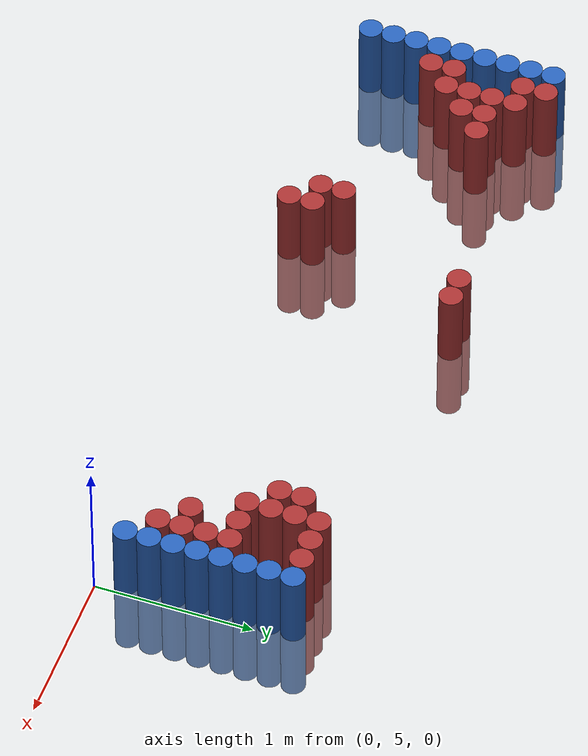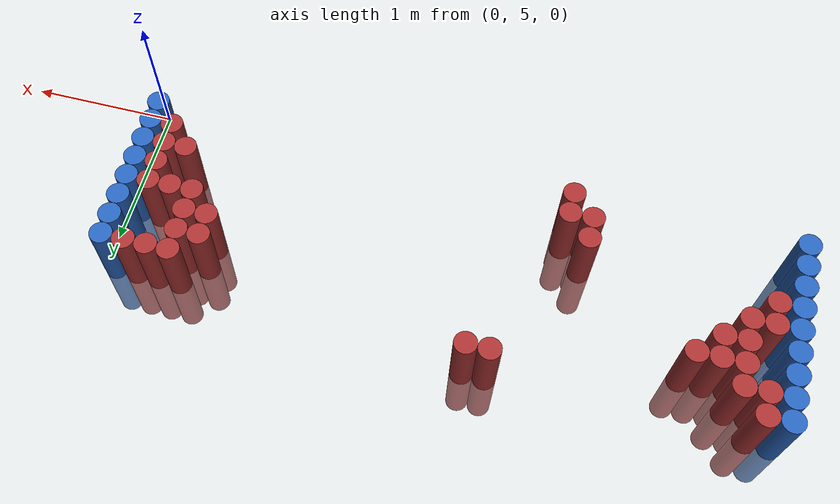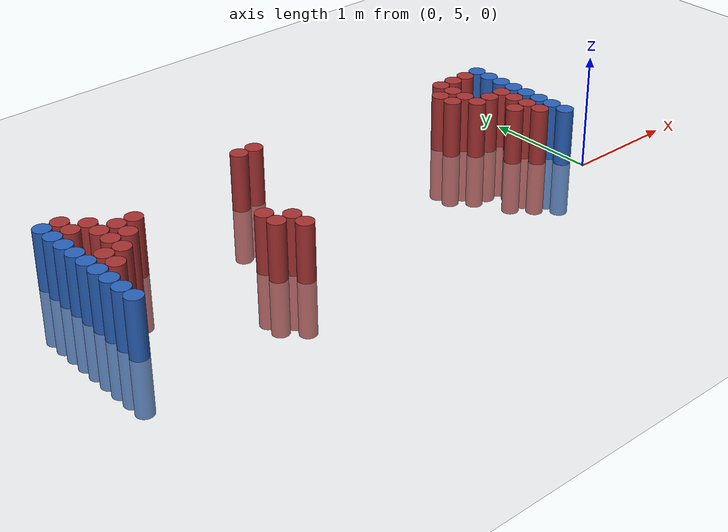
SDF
<sdf version="1.6">
 <world name="default">
  <model name="ground_plane">
   <static>1</static>
   <link name="link">
    <collision name="collision">
     <geometry><plane><normal>0 0 1</normal><size>100 100</size></plane></geometry>
     <surface><friction><ode><mu>100</mu><mu2>50</mu2></ode></friction></surface>
    </collision>
    <visual name="visual">
     <cast_shadows>0</cast_shadows>
     <geometry><plane><normal>0 0 1</normal><size>100 100</size></plane></geometry>
     <material>
      <script><uri>file://media/materials/scripts/gazebo.material</uri><name>Gazebo/Grey</name></script>
     </material>
    </visual>
   </link>
  </model>
  <model name="unit_cylinder_96">
   <static>1</static>
   <pose>-4.425000 5.175000 0.000000 0.000000 0.000000 0.000000</pose>
   <link name="link">
    <inertial>
     <mass>1</mass>
     <inertia><ixx>0.145833</ixx><ixy>0</ixy><ixz>0</ixz><iyy>0.145833</iyy><iyz>0</iyz><izz>0.125</izz></inertia>
    </inertial>
    <collision name="collision">
     <geometry><cylinder><radius>0.075000</radius><length>1</length></cylinder></geometry>
    </collision>
    <visual name="visual">
     <geometry><cylinder><radius>0.075000</radius><length>1</length></cylinder></geometry>
     <material>
      <ambient>0.152000 0.379000 0.720000 1</ambient>
      <diffuse>0.152000 0.379000 0.720000 1</diffuse>
     </material>
     <material>
      <script><name>Gazebo/Grey</name><uri>file://media/materials/scripts/gazebo.material</uri></script>
     </material>
    </visual>
   </link>
  </model>
  <model name="unit_cylinder_97">
   <static>1</static>
   <pose>-4.425000 5.325000 0.000000 0.000000 0.000000 0.000000</pose>
   <link name="link">
    <inertial>
     <mass>1</mass>
     <inertia><ixx>0.145833</ixx><ixy>0</ixy><ixz>0</ixz><iyy>0.145833</iyy><iyz>0</iyz><izz>0.125</izz></inertia>
    </inertial>
    <collision name="collision">
     <geometry><cylinder><radius>0.075000</radius><length>1</length></cylinder></geometry>
    </collision>
    <visual name="visual">
     <geometry><cylinder><radius>0.075000</radius><length>1</length></cylinder></geometry>
     <material>
      <ambient>0.152000 0.379000 0.720000 1</ambient>
      <diffuse>0.152000 0.379000 0.720000 1</diffuse>
     </material>
     <material>
      <script><name>Gazebo/Grey</name><uri>file://media/materials/scripts/gazebo.material</uri></script>
     </material>
    </visual>
   </link>
  </model>
  <model name="unit_cylinder_98">
   <static>1</static>
   <pose>-4.425000 5.475000 0.000000 0.000000 0.000000 0.000000</pose>
   <link name="link">
    <inertial>
     <mass>1</mass>
     <inertia><ixx>0.145833</ixx><ixy>0</ixy><ixz>0</ixz><iyy>0.145833</iyy><iyz>0</iyz><izz>0.125</izz></inertia>
    </inertial>
    <collision name="collision">
     <geometry><cylinder><radius>0.075000</radius><length>1</length></cylinder></geometry>
    </collision>
    <visual name="visual">
     <geometry><cylinder><radius>0.075000</radius><length>1</length></cylinder></geometry>
     <material>
      <ambient>0.152000 0.379000 0.720000 1</ambient>
      <diffuse>0.152000 0.379000 0.720000 1</diffuse>
     </material>
     <material>
      <script><name>Gazebo/Grey</name><uri>file://media/materials/scripts/gazebo.material</uri></script>
     </material>
    </visual>
   </link>
  </model>
  <model name="unit_cylinder_99">
   <static>1</static>
   <pose>-4.425000 5.625000 0.000000 0.000000 0.000000 0.000000</pose>
   <link name="link">
    <inertial>
     <mass>1</mass>
     <inertia><ixx>0.145833</ixx><ixy>0</ixy><ixz>0</ixz><iyy>0.145833</iyy><iyz>0</iyz><izz>0.125</izz></inertia>
    </inertial>
    <collision name="collision">
     <geometry><cylinder><radius>0.075000</radius><length>1</length></cylinder></geometry>
    </collision>
    <visual name="visual">
     <geometry><cylinder><radius>0.075000</radius><length>1</length></cylinder></geometry>
     <material>
      <ambient>0.152000 0.379000 0.720000 1</ambient>
      <diffuse>0.152000 0.379000 0.720000 1</diffuse>
     </material>
     <material>
      <script><name>Gazebo/Grey</name><uri>file://media/materials/scripts/gazebo.material</uri></script>
     </material>
    </visual>
   </link>
  </model>
  <model name="unit_cylinder_100">
   <static>1</static>
   <pose>-4.425000 5.775000 0.000000 0.000000 0.000000 0.000000</pose>
   <link name="link">
    <inertial>
     <mass>1</mass>
     <inertia><ixx>0.145833</ixx><ixy>0</ixy><ixz>0</ixz><iyy>0.145833</iyy><iyz>0</iyz><izz>0.125</izz></inertia>
    </inertial>
    <collision name="collision">
     <geometry><cylinder><radius>0.075000</radius><length>1</length></cylinder></geometry>
    </collision>
    <visual name="visual">
     <geometry><cylinder><radius>0.075000</radius><length>1</length></cylinder></geometry>
     <material>
      <ambient>0.152000 0.379000 0.720000 1</ambient>
      <diffuse>0.152000 0.379000 0.720000 1</diffuse>
     </material>
     <material>
      <script><name>Gazebo/Grey</name><uri>file://media/materials/scripts/gazebo.material</uri></script>
     </material>
    </visual>
   </link>
  </model>
  <model name="unit_cylinder_101">
   <static>1</static>
   <pose>-4.425000 5.925000 0.000000 0.000000 0.000000 0.000000</pose>
   <link name="link">
    <inertial>
     <mass>1</mass>
     <inertia><ixx>0.145833</ixx><ixy>0</ixy><ixz>0</ixz><iyy>0.145833</iyy><iyz>0</iyz><izz>0.125</izz></inertia>
    </inertial>
    <collision name="collision">
     <geometry><cylinder><radius>0.075000</radius><length>1</length></cylinder></geometry>
    </collision>
    <visual name="visual">
     <geometry><cylinder><radius>0.075000</radius><length>1</length></cylinder></geometry>
     <material>
      <ambient>0.152000 0.379000 0.720000 1</ambient>
      <diffuse>0.152000 0.379000 0.720000 1</diffuse>
     </material>
     <material>
      <script><name>Gazebo/Grey</name><uri>file://media/materials/scripts/gazebo.material</uri></script>
     </material>
    </visual>
   </link>
  </model>
  <model name="unit_cylinder_102">
   <static>1</static>
   <pose>-4.425000 6.075000 0.000000 0.000000 0.000000 0.000000</pose>
   <link name="link">
    <inertial>
     <mass>1</mass>
     <inertia><ixx>0.145833</ixx><ixy>0</ixy><ixz>0</ixz><iyy>0.145833</iyy><iyz>0</iyz><izz>0.125</izz></inertia>
    </inertial>
    <collision name="collision">
     <geometry><cylinder><radius>0.075000</radius><length>1</length></cylinder></geometry>
    </collision>
    <visual name="visual">
     <geometry><cylinder><radius>0.075000</radius><length>1</length></cylinder></geometry>
     <material>
      <ambient>0.152000 0.379000 0.720000 1</ambient>
      <diffuse>0.152000 0.379000 0.720000 1</diffuse>
     </material>
     <material>
      <script><name>Gazebo/Grey</name><uri>file://media/materials/scripts/gazebo.material</uri></script>
     </material>
    </visual>
   </link>
  </model>
  <model name="unit_cylinder_103">
   <static>1</static>
   <pose>-4.425000 6.225000 0.000000 0.000000 0.000000 0.000000</pose>
   <link name="link">
    <inertial>
     <mass>1</mass>
     <inertia><ixx>0.145833</ixx><ixy>0</ixy><ixz>0</ixz><iyy>0.145833</iyy><iyz>0</iyz><izz>0.125</izz></inertia>
    </inertial>
    <collision name="collision">
     <geometry><cylinder><radius>0.075000</radius><length>1</length></cylinder></geometry>
    </collision>
    <visual name="visual">
     <geometry><cylinder><radius>0.075000</radius><length>1</length></cylinder></geometry>
     <material>
      <ambient>0.152000 0.379000 0.720000 1</ambient>
      <diffuse>0.152000 0.379000 0.720000 1</diffuse>
     </material>
     <material>
      <script><name>Gazebo/Grey</name><uri>file://media/materials/scripts/gazebo.material</uri></script>
     </material>
    </visual>
   </link>
  </model>
  <model name="unit_cylinder_104">
   <static>1</static>
   <pose>-4.425000 6.375000 0.000000 0.000000 0.000000 0.000000</pose>
   <link name="link">
    <inertial>
     <mass>1</mass>
     <inertia><ixx>0.145833</ixx><ixy>0</ixy><ixz>0</ixz><iyy>0.145833</iyy><iyz>0</iyz><izz>0.125</izz></inertia>
    </inertial>
    <collision name="collision">
     <geometry><cylinder><radius>0.075000</radius><length>1</length></cylinder></geometry>
    </collision>
    <visual name="visual">
     <geometry><cylinder><radius>0.075000</radius><length>1</length></cylinder></geometry>
     <material>
      <ambient>0.152000 0.379000 0.720000 1</ambient>
      <diffuse>0.152000 0.379000 0.720000 1</diffuse>
     </material>
     <material>
      <script><name>Gazebo/Grey</name><uri>file://media/materials/scripts/gazebo.material</uri></script>
     </material>
    </visual>
   </link>
  </model>
  <model name="unit_cylinder_126">
   <static>1</static>
   <pose>-4.275000 5.625000 0.000000 0.000000 0.000000 0.000000</pose>
   <link name="link">
    <inertial>
     <mass>1</mass>
     <inertia><ixx>0.145833</ixx><ixy>0</ixy><ixz>0</ixz><iyy>0.145833</iyy><iyz>0</iyz><izz>0.125</izz></inertia>
    </inertial>
    <collision name="collision">
     <geometry><cylinder><radius>0.075000</radius><length>1</length></cylinder></geometry>
    </collision>
    <visual name="visual">
     <geometry><cylinder><radius>0.075000</radius><length>1</length></cylinder></geometry>
     <material>
      <ambient>0.648000 0.192000 0.192000 1</ambient>
      <diffuse>0.648000 0.192000 0.192000 1</diffuse>
     </material>
     <material>
      <script><name>Gazebo/Grey</name><uri>file://media/materials/scripts/gazebo.material</uri></script>
     </material>
    </visual>
   </link>
  </model>
  <model name="unit_cylinder_127">
   <static>1</static>
   <pose>-4.275000 5.775000 0.000000 0.000000 0.000000 0.000000</pose>
   <link name="link">
    <inertial>
     <mass>1</mass>
     <inertia><ixx>0.145833</ixx><ixy>0</ixy><ixz>0</ixz><iyy>0.145833</iyy><iyz>0</iyz><izz>0.125</izz></inertia>
    </inertial>
    <collision name="collision">
     <geometry><cylinder><radius>0.075000</radius><length>1</length></cylinder></geometry>
    </collision>
    <visual name="visual">
     <geometry><cylinder><radius>0.075000</radius><length>1</length></cylinder></geometry>
     <material>
      <ambient>0.648000 0.192000 0.192000 1</ambient>
      <diffuse>0.648000 0.192000 0.192000 1</diffuse>
     </material>
     <material>
      <script><name>Gazebo/Grey</name><uri>file://media/materials/scripts/gazebo.material</uri></script>
     </material>
    </visual>
   </link>
  </model>
  <model name="unit_cylinder_128">
   <static>1</static>
   <pose>-4.275000 6.225000 0.000000 0.000000 0.000000 0.000000</pose>
   <link name="link">
    <inertial>
     <mass>1</mass>
     <inertia><ixx>0.145833</ixx><ixy>0</ixy><ixz>0</ixz><iyy>0.145833</iyy><iyz>0</iyz><izz>0.125</izz></inertia>
    </inertial>
    <collision name="collision">
     <geometry><cylinder><radius>0.075000</radius><length>1</length></cylinder></geometry>
    </collision>
    <visual name="visual">
     <geometry><cylinder><radius>0.075000</radius><length>1</length></cylinder></geometry>
     <material>
      <ambient>0.648000 0.192000 0.192000 1</ambient>
      <diffuse>0.648000 0.192000 0.192000 1</diffuse>
     </material>
     <material>
      <script><name>Gazebo/Grey</name><uri>file://media/materials/scripts/gazebo.material</uri></script>
     </material>
    </visual>
   </link>
  </model>
  <model name="unit_cylinder_129">
   <static>1</static>
   <pose>-4.275000 6.375000 0.000000 0.000000 0.000000 0.000000</pose>
   <link name="link">
    <inertial>
     <mass>1</mass>
     <inertia><ixx>0.145833</ixx><ixy>0</ixy><ixz>0</ixz><iyy>0.145833</iyy><iyz>0</iyz><izz>0.125</izz></inertia>
    </inertial>
    <collision name="collision">
     <geometry><cylinder><radius>0.075000</radius><length>1</length></cylinder></geometry>
    </collision>
    <visual name="visual">
     <geometry><cylinder><radius>0.075000</radius><length>1</length></cylinder></geometry>
     <material>
      <ambient>0.648000 0.192000 0.192000 1</ambient>
      <diffuse>0.648000 0.192000 0.192000 1</diffuse>
     </material>
     <material>
      <script><name>Gazebo/Grey</name><uri>file://media/materials/scripts/gazebo.material</uri></script>
     </material>
    </visual>
   </link>
  </model>
  <model name="unit_cylinder_134">
   <static>1</static>
   <pose>-4.125000 5.775000 0.000000 0.000000 0.000000 0.000000</pose>
   <link name="link">
    <inertial>
     <mass>1</mass>
     <inertia><ixx>0.145833</ixx><ixy>0</ixy><ixz>0</ixz><iyy>0.145833</iyy><iyz>0</iyz><izz>0.125</izz></inertia>
    </inertial>
    <collision name="collision">
     <geometry><cylinder><radius>0.075000</radius><length>1</length></cylinder></geometry>
    </collision>
    <visual name="visual">
     <geometry><cylinder><radius>0.075000</radius><length>1</length></cylinder></geometry>
     <material>
      <ambient>0.648000 0.192000 0.192000 1</ambient>
      <diffuse>0.648000 0.192000 0.192000 1</diffuse>
     </material>
     <material>
      <script><name>Gazebo/Grey</name><uri>file://media/materials/scripts/gazebo.material</uri></script>
     </material>
    </visual>
   </link>
  </model>
  <model name="unit_cylinder_135">
   <static>1</static>
   <pose>-4.125000 5.925000 0.000000 0.000000 0.000000 0.000000</pose>
   <link name="link">
    <inertial>
     <mass>1</mass>
     <inertia><ixx>0.145833</ixx><ixy>0</ixy><ixz>0</ixz><iyy>0.145833</iyy><iyz>0</iyz><izz>0.125</izz></inertia>
    </inertial>
    <collision name="collision">
     <geometry><cylinder><radius>0.075000</radius><length>1</length></cylinder></geometry>
    </collision>
    <visual name="visual">
     <geometry><cylinder><radius>0.075000</radius><length>1</length></cylinder></geometry>
     <material>
      <ambient>0.648000 0.192000 0.192000 1</ambient>
      <diffuse>0.648000 0.192000 0.192000 1</diffuse>
     </material>
     <material>
      <script><name>Gazebo/Grey</name><uri>file://media/materials/scripts/gazebo.material</uri></script>
     </material>
    </visual>
   </link>
  </model>
  <model name="unit_cylinder_136">
   <static>1</static>
   <pose>-4.125000 6.075000 0.000000 0.000000 0.000000 0.000000</pose>
   <link name="link">
    <inertial>
     <mass>1</mass>
     <inertia><ixx>0.145833</ixx><ixy>0</ixy><ixz>0</ixz><iyy>0.145833</iyy><iyz>0</iyz><izz>0.125</izz></inertia>
    </inertial>
    <collision name="collision">
     <geometry><cylinder><radius>0.075000</radius><length>1</length></cylinder></geometry>
    </collision>
    <visual name="visual">
     <geometry><cylinder><radius>0.075000</radius><length>1</length></cylinder></geometry>
     <material>
      <ambient>0.648000 0.192000 0.192000 1</ambient>
      <diffuse>0.648000 0.192000 0.192000 1</diffuse>
     </material>
     <material>
      <script><name>Gazebo/Grey</name><uri>file://media/materials/scripts/gazebo.material</uri></script>
     </material>
    </visual>
   </link>
  </model>
  <model name="unit_cylinder_137">
   <static>1</static>
   <pose>-4.125000 6.225000 0.000000 0.000000 0.000000 0.000000</pose>
   <link name="link">
    <inertial>
     <mass>1</mass>
     <inertia><ixx>0.145833</ixx><ixy>0</ixy><ixz>0</ixz><iyy>0.145833</iyy><iyz>0</iyz><izz>0.125</izz></inertia>
    </inertial>
    <collision name="collision">
     <geometry><cylinder><radius>0.075000</radius><length>1</length></cylinder></geometry>
    </collision>
    <visual name="visual">
     <geometry><cylinder><radius>0.075000</radius><length>1</length></cylinder></geometry>
     <material>
      <ambient>0.648000 0.192000 0.192000 1</ambient>
      <diffuse>0.648000 0.192000 0.192000 1</diffuse>
     </material>
     <material>
      <script><name>Gazebo/Grey</name><uri>file://media/materials/scripts/gazebo.material</uri></script>
     </material>
    </visual>
   </link>
  </model>
  <model name="unit_cylinder_139">
   <static>1</static>
   <pose>-3.975000 5.925000 0.000000 0.000000 0.000000 0.000000</pose>
   <link name="link">
    <inertial>
     <mass>1</mass>
     <inertia><ixx>0.145833</ixx><ixy>0</ixy><ixz>0</ixz><iyy>0.145833</iyy><iyz>0</iyz><izz>0.125</izz></inertia>
    </inertial>
    <collision name="collision">
     <geometry><cylinder><radius>0.075000</radius><length>1</length></cylinder></geometry>
    </collision>
    <visual name="visual">
     <geometry><cylinder><radius>0.075000</radius><length>1</length></cylinder></geometry>
     <material>
      <ambient>0.648000 0.192000 0.192000 1</ambient>
      <diffuse>0.648000 0.192000 0.192000 1</diffuse>
     </material>
     <material>
      <script><name>Gazebo/Grey</name><uri>file://media/materials/scripts/gazebo.material</uri></script>
     </material>
    </visual>
   </link>
  </model>
  <model name="unit_cylinder_140">
   <static>1</static>
   <pose>-3.975000 6.075000 0.000000 0.000000 0.000000 0.000000</pose>
   <link name="link">
    <inertial>
     <mass>1</mass>
     <inertia><ixx>0.145833</ixx><ixy>0</ixy><ixz>0</ixz><iyy>0.145833</iyy><iyz>0</iyz><izz>0.125</izz></inertia>
    </inertial>
    <collision name="collision">
     <geometry><cylinder><radius>0.075000</radius><length>1</length></cylinder></geometry>
    </collision>
    <visual name="visual">
     <geometry><cylinder><radius>0.075000</radius><length>1</length></cylinder></geometry>
     <material>
      <ambient>0.648000 0.192000 0.192000 1</ambient>
      <diffuse>0.648000 0.192000 0.192000 1</diffuse>
     </material>
     <material>
      <script><name>Gazebo/Grey</name><uri>file://media/materials/scripts/gazebo.material</uri></script>
     </material>
    </visual>
   </link>
  </model>
  <model name="unit_cylinder_142">
   <static>1</static>
   <pose>-3.825000 6.075000 0.000000 0.000000 0.000000 0.000000</pose>
   <link name="link">
    <inertial>
     <mass>1</mass>
     <inertia><ixx>0.145833</ixx><ixy>0</ixy><ixz>0</ixz><iyy>0.145833</iyy><iyz>0</iyz><izz>0.125</izz></inertia>
    </inertial>
    <collision name="collision">
     <geometry><cylinder><radius>0.075000</radius><length>1</length></cylinder></geometry>
    </collision>
    <visual name="visual">
     <geometry><cylinder><radius>0.075000</radius><length>1</length></cylinder></geometry>
     <material>
      <ambient>0.648000 0.192000 0.192000 1</ambient>
      <diffuse>0.648000 0.192000 0.192000 1</diffuse>
     </material>
     <material>
      <script><name>Gazebo/Grey</name><uri>file://media/materials/scripts/gazebo.material</uri></script>
     </material>
    </visual>
   </link>
  </model>
  <model name="unit_cylinder_164">
   <static>1</static>
   <pose>-3.075000 5.325000 0.000000 0.000000 0.000000 0.000000</pose>
   <link name="link">
    <inertial>
     <mass>1</mass>
     <inertia><ixx>0.145833</ixx><ixy>0</ixy><ixz>0</ixz><iyy>0.145833</iyy><iyz>0</iyz><izz>0.125</izz></inertia>
    </inertial>
    <collision name="collision">
     <geometry><cylinder><radius>0.075000</radius><length>1</length></cylinder></geometry>
    </collision>
    <visual name="visual">
     <geometry><cylinder><radius>0.075000</radius><length>1</length></cylinder></geometry>
     <material>
      <ambient>0.648000 0.192000 0.192000 1</ambient>
      <diffuse>0.648000 0.192000 0.192000 1</diffuse>
     </material>
     <material>
      <script><name>Gazebo/Grey</name><uri>file://media/materials/scripts/gazebo.material</uri></script>
     </material>
    </visual>
   </link>
  </model>
  <model name="unit_cylinder_165">
   <static>1</static>
   <pose>-3.075000 5.475000 0.000000 0.000000 0.000000 0.000000</pose>
   <link name="link">
    <inertial>
     <mass>1</mass>
     <inertia><ixx>0.145833</ixx><ixy>0</ixy><ixz>0</ixz><iyy>0.145833</iyy><iyz>0</iyz><izz>0.125</izz></inertia>
    </inertial>
    <collision name="collision">
     <geometry><cylinder><radius>0.075000</radius><length>1</length></cylinder></geometry>
    </collision>
    <visual name="visual">
     <geometry><cylinder><radius>0.075000</radius><length>1</length></cylinder></geometry>
     <material>
      <ambient>0.648000 0.192000 0.192000 1</ambient>
      <diffuse>0.648000 0.192000 0.192000 1</diffuse>
     </material>
     <material>
      <script><name>Gazebo/Grey</name><uri>file://media/materials/scripts/gazebo.material</uri></script>
     </material>
    </visual>
   </link>
  </model>
  <model name="unit_cylinder_167">
   <static>1</static>
   <pose>-2.925000 5.175000 0.000000 0.000000 0.000000 0.000000</pose>
   <link name="link">
    <inertial>
     <mass>1</mass>
     <inertia><ixx>0.145833</ixx><ixy>0</ixy><ixz>0</ixz><iyy>0.145833</iyy><iyz>0</iyz><izz>0.125</izz></inertia>
    </inertial>
    <collision name="collision">
     <geometry><cylinder><radius>0.075000</radius><length>1</length></cylinder></geometry>
    </collision>
    <visual name="visual">
     <geometry><cylinder><radius>0.075000</radius><length>1</length></cylinder></geometry>
     <material>
      <ambient>0.648000 0.192000 0.192000 1</ambient>
      <diffuse>0.648000 0.192000 0.192000 1</diffuse>
     </material>
     <material>
      <script><name>Gazebo/Grey</name><uri>file://media/materials/scripts/gazebo.material</uri></script>
     </material>
    </visual>
   </link>
  </model>
  <model name="unit_cylinder_168">
   <static>1</static>
   <pose>-2.925000 5.325000 0.000000 0.000000 0.000000 0.000000</pose>
   <link name="link">
    <inertial>
     <mass>1</mass>
     <inertia><ixx>0.145833</ixx><ixy>0</ixy><ixz>0</ixz><iyy>0.145833</iyy><iyz>0</iyz><izz>0.125</izz></inertia>
    </inertial>
    <collision name="collision">
     <geometry><cylinder><radius>0.075000</radius><length>1</length></cylinder></geometry>
    </collision>
    <visual name="visual">
     <geometry><cylinder><radius>0.075000</radius><length>1</length></cylinder></geometry>
     <material>
      <ambient>0.648000 0.192000 0.192000 1</ambient>
      <diffuse>0.648000 0.192000 0.192000 1</diffuse>
     </material>
     <material>
      <script><name>Gazebo/Grey</name><uri>file://media/materials/scripts/gazebo.material</uri></script>
     </material>
    </visual>
   </link>
  </model>
  <model name="unit_cylinder_169">
   <static>1</static>
   <pose>-2.625000 6.375000 0.000000 0.000000 0.000000 0.000000</pose>
   <link name="link">
    <inertial>
     <mass>1</mass>
     <inertia><ixx>0.145833</ixx><ixy>0</ixy><ixz>0</ixz><iyy>0.145833</iyy><iyz>0</iyz><izz>0.125</izz></inertia>
    </inertial>
    <collision name="collision">
     <geometry><cylinder><radius>0.075000</radius><length>1</length></cylinder></geometry>
    </collision>
    <visual name="visual">
     <geometry><cylinder><radius>0.075000</radius><length>1</length></cylinder></geometry>
     <material>
      <ambient>0.648000 0.192000 0.192000 1</ambient>
      <diffuse>0.648000 0.192000 0.192000 1</diffuse>
     </material>
     <material>
      <script><name>Gazebo/Grey</name><uri>file://media/materials/scripts/gazebo.material</uri></script>
     </material>
    </visual>
   </link>
  </model>
  <model name="unit_cylinder_174">
   <static>1</static>
   <pose>-2.475000 6.375000 0.000000 0.000000 0.000000 0.000000</pose>
   <link name="link">
    <inertial>
     <mass>1</mass>
     <inertia><ixx>0.145833</ixx><ixy>0</ixy><ixz>0</ixz><iyy>0.145833</iyy><iyz>0</iyz><izz>0.125</izz></inertia>
    </inertial>
    <collision name="collision">
     <geometry><cylinder><radius>0.075000</radius><length>1</length></cylinder></geometry>
    </collision>
    <visual name="visual">
     <geometry><cylinder><radius>0.075000</radius><length>1</length></cylinder></geometry>
     <material>
      <ambient>0.648000 0.192000 0.192000 1</ambient>
      <diffuse>0.648000 0.192000 0.192000 1</diffuse>
     </material>
     <material>
      <script><name>Gazebo/Grey</name><uri>file://media/materials/scripts/gazebo.material</uri></script>
     </material>
    </visual>
   </link>
  </model>
  <model name="unit_cylinder_193">
   <static>1</static>
   <pose>-0.675000 5.925000 0.000000 0.000000 0.000000 0.000000</pose>
   <link name="link">
    <inertial>
     <mass>1</mass>
     <inertia><ixx>0.145833</ixx><ixy>0</ixy><ixz>0</ixz><iyy>0.145833</iyy><iyz>0</iyz><izz>0.125</izz></inertia>
    </inertial>
    <collision name="collision">
     <geometry><cylinder><radius>0.075000</radius><length>1</length></cylinder></geometry>
    </collision>
    <visual name="visual">
     <geometry><cylinder><radius>0.075000</radius><length>1</length></cylinder></geometry>
     <material>
      <ambient>0.648000 0.192000 0.192000 1</ambient>
      <diffuse>0.648000 0.192000 0.192000 1</diffuse>
     </material>
     <material>
      <script><name>Gazebo/Grey</name><uri>file://media/materials/scripts/gazebo.material</uri></script>
     </material>
    </visual>
   </link>
  </model>
  <model name="unit_cylinder_194">
   <static>1</static>
   <pose>-0.675000 6.075000 0.000000 0.000000 0.000000 0.000000</pose>
   <link name="link">
    <inertial>
     <mass>1</mass>
     <inertia><ixx>0.145833</ixx><ixy>0</ixy><ixz>0</ixz><iyy>0.145833</iyy><iyz>0</iyz><izz>0.125</izz></inertia>
    </inertial>
    <collision name="collision">
     <geometry><cylinder><radius>0.075000</radius><length>1</length></cylinder></geometry>
    </collision>
    <visual name="visual">
     <geometry><cylinder><radius>0.075000</radius><length>1</length></cylinder></geometry>
     <material>
      <ambient>0.648000 0.192000 0.192000 1</ambient>
      <diffuse>0.648000 0.192000 0.192000 1</diffuse>
     </material>
     <material>
      <script><name>Gazebo/Grey</name><uri>file://media/materials/scripts/gazebo.material</uri></script>
     </material>
    </visual>
   </link>
  </model>
  <model name="unit_cylinder_195">
   <static>1</static>
   <pose>-0.525000 5.775000 0.000000 0.000000 0.000000 0.000000</pose>
   <link name="link">
    <inertial>
     <mass>1</mass>
     <inertia><ixx>0.145833</ixx><ixy>0</ixy><ixz>0</ixz><iyy>0.145833</iyy><iyz>0</iyz><izz>0.125</izz></inertia>
    </inertial>
    <collision name="collision">
     <geometry><cylinder><radius>0.075000</radius><length>1</length></cylinder></geometry>
    </collision>
    <visual name="visual">
     <geometry><cylinder><radius>0.075000</radius><length>1</length></cylinder></geometry>
     <material>
      <ambient>0.648000 0.192000 0.192000 1</ambient>
      <diffuse>0.648000 0.192000 0.192000 1</diffuse>
     </material>
     <material>
      <script><name>Gazebo/Grey</name><uri>file://media/materials/scripts/gazebo.material</uri></script>
     </material>
    </visual>
   </link>
  </model>
  <model name="unit_cylinder_196">
   <static>1</static>
   <pose>-0.525000 5.925000 0.000000 0.000000 0.000000 0.000000</pose>
   <link name="link">
    <inertial>
     <mass>1</mass>
     <inertia><ixx>0.145833</ixx><ixy>0</ixy><ixz>0</ixz><iyy>0.145833</iyy><iyz>0</iyz><izz>0.125</izz></inertia>
    </inertial>
    <collision name="collision">
     <geometry><cylinder><radius>0.075000</radius><length>1</length></cylinder></geometry>
    </collision>
    <visual name="visual">
     <geometry><cylinder><radius>0.075000</radius><length>1</length></cylinder></geometry>
     <material>
      <ambient>0.648000 0.192000 0.192000 1</ambient>
      <diffuse>0.648000 0.192000 0.192000 1</diffuse>
     </material>
     <material>
      <script><name>Gazebo/Grey</name><uri>file://media/materials/scripts/gazebo.material</uri></script>
     </material>
    </visual>
   </link>
  </model>
  <model name="unit_cylinder_197">
   <static>1</static>
   <pose>-0.525000 6.075000 0.000000 0.000000 0.000000 0.000000</pose>
   <link name="link">
    <inertial>
     <mass>1</mass>
     <inertia><ixx>0.145833</ixx><ixy>0</ixy><ixz>0</ixz><iyy>0.145833</iyy><iyz>0</iyz><izz>0.125</izz></inertia>
    </inertial>
    <collision name="collision">
     <geometry><cylinder><radius>0.075000</radius><length>1</length></cylinder></geometry>
    </collision>
    <visual name="visual">
     <geometry><cylinder><radius>0.075000</radius><length>1</length></cylinder></geometry>
     <material>
      <ambient>0.648000 0.192000 0.192000 1</ambient>
      <diffuse>0.648000 0.192000 0.192000 1</diffuse>
     </material>
     <material>
      <script><name>Gazebo/Grey</name><uri>file://media/materials/scripts/gazebo.material</uri></script>
     </material>
    </visual>
   </link>
  </model>
  <model name="unit_cylinder_198">
   <static>1</static>
   <pose>-0.525000 6.225000 0.000000 0.000000 0.000000 0.000000</pose>
   <link name="link">
    <inertial>
     <mass>1</mass>
     <inertia><ixx>0.145833</ixx><ixy>0</ixy><ixz>0</ixz><iyy>0.145833</iyy><iyz>0</iyz><izz>0.125</izz></inertia>
    </inertial>
    <collision name="collision">
     <geometry><cylinder><radius>0.075000</radius><length>1</length></cylinder></geometry>
    </collision>
    <visual name="visual">
     <geometry><cylinder><radius>0.075000</radius><length>1</length></cylinder></geometry>
     <material>
      <ambient>0.648000 0.192000 0.192000 1</ambient>
      <diffuse>0.648000 0.192000 0.192000 1</diffuse>
     </material>
     <material>
      <script><name>Gazebo/Grey</name><uri>file://media/materials/scripts/gazebo.material</uri></script>
     </material>
    </visual>
   </link>
  </model>
  <model name="unit_cylinder_199">
   <static>1</static>
   <pose>-0.375000 5.475000 0.000000 0.000000 0.000000 0.000000</pose>
   <link name="link">
    <inertial>
     <mass>1</mass>
     <inertia><ixx>0.145833</ixx><ixy>0</ixy><ixz>0</ixz><iyy>0.145833</iyy><iyz>0</iyz><izz>0.125</izz></inertia>
    </inertial>
    <collision name="collision">
     <geometry><cylinder><radius>0.075000</radius><length>1</length></cylinder></geometry>
    </collision>
    <visual name="visual">
     <geometry><cylinder><radius>0.075000</radius><length>1</length></cylinder></geometry>
     <material>
      <ambient>0.648000 0.192000 0.192000 1</ambient>
      <diffuse>0.648000 0.192000 0.192000 1</diffuse>
     </material>
     <material>
      <script><name>Gazebo/Grey</name><uri>file://media/materials/scripts/gazebo.material</uri></script>
     </material>
    </visual>
   </link>
  </model>
  <model name="unit_cylinder_200">
   <static>1</static>
   <pose>-0.375000 5.775000 0.000000 0.000000 0.000000 0.000000</pose>
   <link name="link">
    <inertial>
     <mass>1</mass>
     <inertia><ixx>0.145833</ixx><ixy>0</ixy><ixz>0</ixz><iyy>0.145833</iyy><iyz>0</iyz><izz>0.125</izz></inertia>
    </inertial>
    <collision name="collision">
     <geometry><cylinder><radius>0.075000</radius><length>1</length></cylinder></geometry>
    </collision>
    <visual name="visual">
     <geometry><cylinder><radius>0.075000</radius><length>1</length></cylinder></geometry>
     <material>
      <ambient>0.648000 0.192000 0.192000 1</ambient>
      <diffuse>0.648000 0.192000 0.192000 1</diffuse>
     </material>
     <material>
      <script><name>Gazebo/Grey</name><uri>file://media/materials/scripts/gazebo.material</uri></script>
     </material>
    </visual>
   </link>
  </model>
  <model name="unit_cylinder_201">
   <static>1</static>
   <pose>-0.375000 6.225000 0.000000 0.000000 0.000000 0.000000</pose>
   <link name="link">
    <inertial>
     <mass>1</mass>
     <inertia><ixx>0.145833</ixx><ixy>0</ixy><ixz>0</ixz><iyy>0.145833</iyy><iyz>0</iyz><izz>0.125</izz></inertia>
    </inertial>
    <collision name="collision">
     <geometry><cylinder><radius>0.075000</radius><length>1</length></cylinder></geometry>
    </collision>
    <visual name="visual">
     <geometry><cylinder><radius>0.075000</radius><length>1</length></cylinder></geometry>
     <material>
      <ambient>0.648000 0.192000 0.192000 1</ambient>
      <diffuse>0.648000 0.192000 0.192000 1</diffuse>
     </material>
     <material>
      <script><name>Gazebo/Grey</name><uri>file://media/materials/scripts/gazebo.material</uri></script>
     </material>
    </visual>
   </link>
  </model>
  <model name="unit_cylinder_202">
   <static>1</static>
   <pose>-0.225000 5.325000 0.000000 0.000000 0.000000 0.000000</pose>
   <link name="link">
    <inertial>
     <mass>1</mass>
     <inertia><ixx>0.145833</ixx><ixy>0</ixy><ixz>0</ixz><iyy>0.145833</iyy><iyz>0</iyz><izz>0.125</izz></inertia>
    </inertial>
    <collision name="collision">
     <geometry><cylinder><radius>0.075000</radius><length>1</length></cylinder></geometry>
    </collision>
    <visual name="visual">
     <geometry><cylinder><radius>0.075000</radius><length>1</length></cylinder></geometry>
     <material>
      <ambient>0.648000 0.192000 0.192000 1</ambient>
      <diffuse>0.648000 0.192000 0.192000 1</diffuse>
     </material>
     <material>
      <script><name>Gazebo/Grey</name><uri>file://media/materials/scripts/gazebo.material</uri></script>
     </material>
    </visual>
   </link>
  </model>
  <model name="unit_cylinder_203">
   <static>1</static>
   <pose>-0.225000 5.475000 0.000000 0.000000 0.000000 0.000000</pose>
   <link name="link">
    <inertial>
     <mass>1</mass>
     <inertia><ixx>0.145833</ixx><ixy>0</ixy><ixz>0</ixz><iyy>0.145833</iyy><iyz>0</iyz><izz>0.125</izz></inertia>
    </inertial>
    <collision name="collision">
     <geometry><cylinder><radius>0.075000</radius><length>1</length></cylinder></geometry>
    </collision>
    <visual name="visual">
     <geometry><cylinder><radius>0.075000</radius><length>1</length></cylinder></geometry>
     <material>
      <ambient>0.648000 0.192000 0.192000 1</ambient>
      <diffuse>0.648000 0.192000 0.192000 1</diffuse>
     </material>
     <material>
      <script><name>Gazebo/Grey</name><uri>file://media/materials/scripts/gazebo.material</uri></script>
     </material>
    </visual>
   </link>
  </model>
  <model name="unit_cylinder_204">
   <static>1</static>
   <pose>-0.225000 5.625000 0.000000 0.000000 0.000000 0.000000</pose>
   <link name="link">
    <inertial>
     <mass>1</mass>
     <inertia><ixx>0.145833</ixx><ixy>0</ixy><ixz>0</ixz><iyy>0.145833</iyy><iyz>0</iyz><izz>0.125</izz></inertia>
    </inertial>
    <collision name="collision">
     <geometry><cylinder><radius>0.075000</radius><length>1</length></cylinder></geometry>
    </collision>
    <visual name="visual">
     <geometry><cylinder><radius>0.075000</radius><length>1</length></cylinder></geometry>
     <material>
      <ambient>0.648000 0.192000 0.192000 1</ambient>
      <diffuse>0.648000 0.192000 0.192000 1</diffuse>
     </material>
     <material>
      <script><name>Gazebo/Grey</name><uri>file://media/materials/scripts/gazebo.material</uri></script>
     </material>
    </visual>
   </link>
  </model>
  <model name="unit_cylinder_205">
   <static>1</static>
   <pose>-0.225000 5.775000 0.000000 0.000000 0.000000 0.000000</pose>
   <link name="link">
    <inertial>
     <mass>1</mass>
     <inertia><ixx>0.145833</ixx><ixy>0</ixy><ixz>0</ixz><iyy>0.145833</iyy><iyz>0</iyz><izz>0.125</izz></inertia>
    </inertial>
    <collision name="collision">
     <geometry><cylinder><radius>0.075000</radius><length>1</length></cylinder></geometry>
    </collision>
    <visual name="visual">
     <geometry><cylinder><radius>0.075000</radius><length>1</length></cylinder></geometry>
     <material>
      <ambient>0.648000 0.192000 0.192000 1</ambient>
      <diffuse>0.648000 0.192000 0.192000 1</diffuse>
     </material>
     <material>
      <script><name>Gazebo/Grey</name><uri>file://media/materials/scripts/gazebo.material</uri></script>
     </material>
    </visual>
   </link>
  </model>
  <model name="unit_cylinder_206">
   <static>1</static>
   <pose>-0.225000 6.225000 0.000000 0.000000 0.000000 0.000000</pose>
   <link name="link">
    <inertial>
     <mass>1</mass>
     <inertia><ixx>0.145833</ixx><ixy>0</ixy><ixz>0</ixz><iyy>0.145833</iyy><iyz>0</iyz><izz>0.125</izz></inertia>
    </inertial>
    <collision name="collision">
     <geometry><cylinder><radius>0.075000</radius><length>1</length></cylinder></geometry>
    </collision>
    <visual name="visual">
     <geometry><cylinder><radius>0.075000</radius><length>1</length></cylinder></geometry>
     <material>
      <ambient>0.648000 0.192000 0.192000 1</ambient>
      <diffuse>0.648000 0.192000 0.192000 1</diffuse>
     </material>
     <material>
      <script><name>Gazebo/Grey</name><uri>file://media/materials/scripts/gazebo.material</uri></script>
     </material>
    </visual>
   </link>
  </model>
  <model name="unit_cylinder_210">
   <static>1</static>
   <pose>-0.075000 5.175000 0.000000 0.000000 0.000000 0.000000</pose>
   <link name="link">
    <inertial>
     <mass>1</mass>
     <inertia><ixx>0.145833</ixx><ixy>0</ixy><ixz>0</ixz><iyy>0.145833</iyy><iyz>0</iyz><izz>0.125</izz></inertia>
    </inertial>
    <collision name="collision">
     <geometry><cylinder><radius>0.075000</radius><length>1</length></cylinder></geometry>
    </collision>
    <visual name="visual">
     <geometry><cylinder><radius>0.075000</radius><length>1</length></cylinder></geometry>
     <material>
      <ambient>0.152000 0.379000 0.720000 1</ambient>
      <diffuse>0.152000 0.379000 0.720000 1</diffuse>
     </material>
     <material>
      <script><name>Gazebo/Grey</name><uri>file://media/materials/scripts/gazebo.material</uri></script>
     </material>
    </visual>
   </link>
  </model>
  <model name="unit_cylinder_211">
   <static>1</static>
   <pose>-0.075000 5.325000 0.000000 0.000000 0.000000 0.000000</pose>
   <link name="link">
    <inertial>
     <mass>1</mass>
     <inertia><ixx>0.145833</ixx><ixy>0</ixy><ixz>0</ixz><iyy>0.145833</iyy><iyz>0</iyz><izz>0.125</izz></inertia>
    </inertial>
    <collision name="collision">
     <geometry><cylinder><radius>0.075000</radius><length>1</length></cylinder></geometry>
    </collision>
    <visual name="visual">
     <geometry><cylinder><radius>0.075000</radius><length>1</length></cylinder></geometry>
     <material>
      <ambient>0.152000 0.379000 0.720000 1</ambient>
      <diffuse>0.152000 0.379000 0.720000 1</diffuse>
     </material>
     <material>
      <script><name>Gazebo/Grey</name><uri>file://media/materials/scripts/gazebo.material</uri></script>
     </material>
    </visual>
   </link>
  </model>
  <model name="unit_cylinder_212">
   <static>1</static>
   <pose>-0.075000 5.475000 0.000000 0.000000 0.000000 0.000000</pose>
   <link name="link">
    <inertial>
     <mass>1</mass>
     <inertia><ixx>0.145833</ixx><ixy>0</ixy><ixz>0</ixz><iyy>0.145833</iyy><iyz>0</iyz><izz>0.125</izz></inertia>
    </inertial>
    <collision name="collision">
     <geometry><cylinder><radius>0.075000</radius><length>1</length></cylinder></geometry>
    </collision>
    <visual name="visual">
     <geometry><cylinder><radius>0.075000</radius><length>1</length></cylinder></geometry>
     <material>
      <ambient>0.152000 0.379000 0.720000 1</ambient>
      <diffuse>0.152000 0.379000 0.720000 1</diffuse>
     </material>
     <material>
      <script><name>Gazebo/Grey</name><uri>file://media/materials/scripts/gazebo.material</uri></script>
     </material>
    </visual>
   </link>
  </model>
  <model name="unit_cylinder_213">
   <static>1</static>
   <pose>-0.075000 5.625000 0.000000 0.000000 0.000000 0.000000</pose>
   <link name="link">
    <inertial>
     <mass>1</mass>
     <inertia><ixx>0.145833</ixx><ixy>0</ixy><ixz>0</ixz><iyy>0.145833</iyy><iyz>0</iyz><izz>0.125</izz></inertia>
    </inertial>
    <collision name="collision">
     <geometry><cylinder><radius>0.075000</radius><length>1</length></cylinder></geometry>
    </collision>
    <visual name="visual">
     <geometry><cylinder><radius>0.075000</radius><length>1</length></cylinder></geometry>
     <material>
      <ambient>0.152000 0.379000 0.720000 1</ambient>
      <diffuse>0.152000 0.379000 0.720000 1</diffuse>
     </material>
     <material>
      <script><name>Gazebo/Grey</name><uri>file://media/materials/scripts/gazebo.material</uri></script>
     </material>
    </visual>
   </link>
  </model>
  <model name="unit_cylinder_214">
   <static>1</static>
   <pose>-0.075000 5.775000 0.000000 0.000000 0.000000 0.000000</pose>
   <link name="link">
    <inertial>
     <mass>1</mass>
     <inertia><ixx>0.145833</ixx><ixy>0</ixy><ixz>0</ixz><iyy>0.145833</iyy><iyz>0</iyz><izz>0.125</izz></inertia>
    </inertial>
    <collision name="collision">
     <geometry><cylinder><radius>0.075000</radius><length>1</length></cylinder></geometry>
    </collision>
    <visual name="visual">
     <geometry><cylinder><radius>0.075000</radius><length>1</length></cylinder></geometry>
     <material>
      <ambient>0.152000 0.379000 0.720000 1</ambient>
      <diffuse>0.152000 0.379000 0.720000 1</diffuse>
     </material>
     <material>
      <script><name>Gazebo/Grey</name><uri>file://media/materials/scripts/gazebo.material</uri></script>
     </material>
    </visual>
   </link>
  </model>
  <model name="unit_cylinder_215">
   <static>1</static>
   <pose>-0.075000 5.925000 0.000000 0.000000 0.000000 0.000000</pose>
   <link name="link">
    <inertial>
     <mass>1</mass>
     <inertia><ixx>0.145833</ixx><ixy>0</ixy><ixz>0</ixz><iyy>0.145833</iyy><iyz>0</iyz><izz>0.125</izz></inertia>
    </inertial>
    <collision name="collision">
     <geometry><cylinder><radius>0.075000</radius><length>1</length></cylinder></geometry>
    </collision>
    <visual name="visual">
     <geometry><cylinder><radius>0.075000</radius><length>1</length></cylinder></geometry>
     <material>
      <ambient>0.152000 0.379000 0.720000 1</ambient>
      <diffuse>0.152000 0.379000 0.720000 1</diffuse>
     </material>
     <material>
      <script><name>Gazebo/Grey</name><uri>file://media/materials/scripts/gazebo.material</uri></script>
     </material>
    </visual>
   </link>
  </model>
  <model name="unit_cylinder_216">
   <static>1</static>
   <pose>-0.075000 6.075000 0.000000 0.000000 0.000000 0.000000</pose>
   <link name="link">
    <inertial>
     <mass>1</mass>
     <inertia><ixx>0.145833</ixx><ixy>0</ixy><ixz>0</ixz><iyy>0.145833</iyy><iyz>0</iyz><izz>0.125</izz></inertia>
    </inertial>
    <collision name="collision">
     <geometry><cylinder><radius>0.075000</radius><length>1</length></cylinder></geometry>
    </collision>
    <visual name="visual">
     <geometry><cylinder><radius>0.075000</radius><length>1</length></cylinder></geometry>
     <material>
      <ambient>0.152000 0.379000 0.720000 1</ambient>
      <diffuse>0.152000 0.379000 0.720000 1</diffuse>
     </material>
     <material>
      <script><name>Gazebo/Grey</name><uri>file://media/materials/scripts/gazebo.material</uri></script>
     </material>
    </visual>
   </link>
  </model>
  <model name="unit_cylinder_217">
   <static>1</static>
   <pose>-0.075000 6.225000 0.000000 0.000000 0.000000 0.000000</pose>
   <link name="link">
    <inertial>
     <mass>1</mass>
     <inertia><ixx>0.145833</ixx><ixy>0</ixy><ixz>0</ixz><iyy>0.145833</iyy><iyz>0</iyz><izz>0.125</izz></inertia>
    </inertial>
    <collision name="collision">
     <geometry><cylinder><radius>0.075000</radius><length>1</length></cylinder></geometry>
    </collision>
    <visual name="visual">
     <geometry><cylinder><radius>0.075000</radius><length>1</length></cylinder></geometry>
     <material>
      <ambient>0.152000 0.379000 0.720000 1</ambient>
      <diffuse>0.152000 0.379000 0.720000 1</diffuse>
     </material>
     <material>
      <script><name>Gazebo/Grey</name><uri>file://media/materials/scripts/gazebo.material</uri></script>
     </material>
    </visual>
   </link>
  </model>
 </world>
</sdf>
